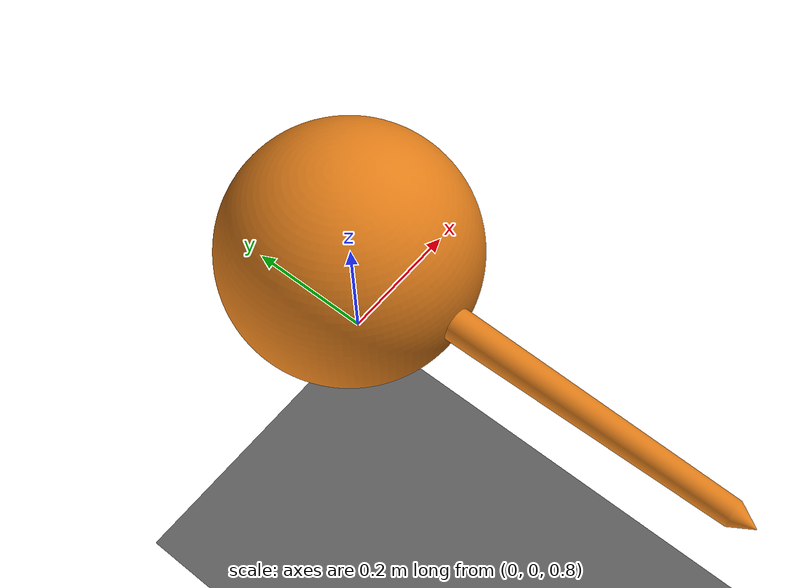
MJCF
<mujoco model='urchin'>
    <compiler inertiafromgeom='auto' angle='degree' eulerseq='zyx' meshdir='meshes'/>
    <size nuser_actuator='1' nuser_sensor='1' nuser_geom='1'/>
    <option timestep='0.01' iterations='50' solver='PGS' gravity='0 0 -9.81'/>
    <!-- Gravity will change based on the exterr. body we are sim -->

    <default>
        <joint limited='true'/>
        <motor ctrllimited='true'/>
        <geom contype='0' conaffinity='0' condim='1' solref='0.005 1'/>
        <equality solref='0.005 1'/>
        <default class='urchin'>
            <geom material='urchin'/>
        </default>

        <default class='collision'>
            <!-- User parameter for geoms is used to identify collision types -->
            <geom material='collision' contype='1' user='2'/>
        </default>

	</default>

	<asset>
	    <texture type='skybox' builtin='gradient' width='128' height='128' rgb1='0.4 0.6 0.8' rgb2='0 0 0'/>
        <texture name='plane' type='2d' builtin='checker' rgb1='0.25 0.25 0.25' rgb2='0.5 0.5 0.5' width='512' height='512'/>
        <material name='plane' reflectance='0.0' texture='plane' texrepeat='1 1' texuniform='true'/>
        <material name='urchin' rgba='0.9 0.5 0.1 1'/>
        <mesh name='body' scale='1.5 1.5 1.5' file='sphere_body.stl'/>
        <mesh name='spine' file='rod_spine_w_point.stl'/>
        <material name='collision' rgba='0.1 0.5 0.9 0'/>
	</asset>

	<worldbody>
		<geom name='floor' pos='0.001 0 0' size='10 10 .125' type='plane' material='plane' conaffinity='15'/>

        <body name='body' pos='0 0 1' childclass='urchin'>
            <camera name='track' pos='0 -3 1' zaxis='0 -1 0.5' mode='track'/>
            <joint type='slide' axis='1 0 0' limited='false'/>
            <joint type='slide' axis='0 1 0' limited='false'/>
            <joint type='slide' axis='0 0 1' limited='false' ref='1.01'/>
            <joint type='ball' limited='false'/>
            <geom type='mesh' mesh='body'/>
            <geom type='mesh' mesh='body' class='collision'/>
            <site name='imu' size='0.01' pos='0 0 0'/>

            <body name='spine1' pos='0 -.55 0' xyaxes='0 0 1 1 0 0'>
                <joint name='spine1' type='slide' range='0 .35' damping='10'/>
                <geom type='mesh' mesh='spine' class='collision'/>
                <geom type='mesh' mesh='spine'/>
            </body>
        </body>
	</worldbody>

    <actuator>
        <position name='spine1'  joint='spine1' kp='100' ctrlrange='-100 100'/>
    </actuator>

    <sensor>
        <framequat     name='body-orientation' objtype='site' objname='imu'/>
        <gyro          name='body-angular-velocity'    site='imu' noise='5e-4' cutoff='34.9'/>
        <accelerometer name='body-linear-acceleration' site='imu' noise='1e-2' cutoff='157'/>
        <magnetometer  name='body-magnetometer'        site='imu'/>
    </sensor>

</mujoco>
